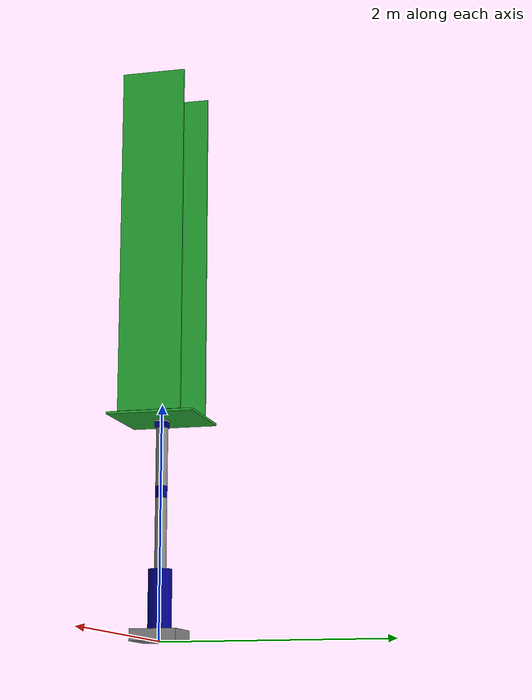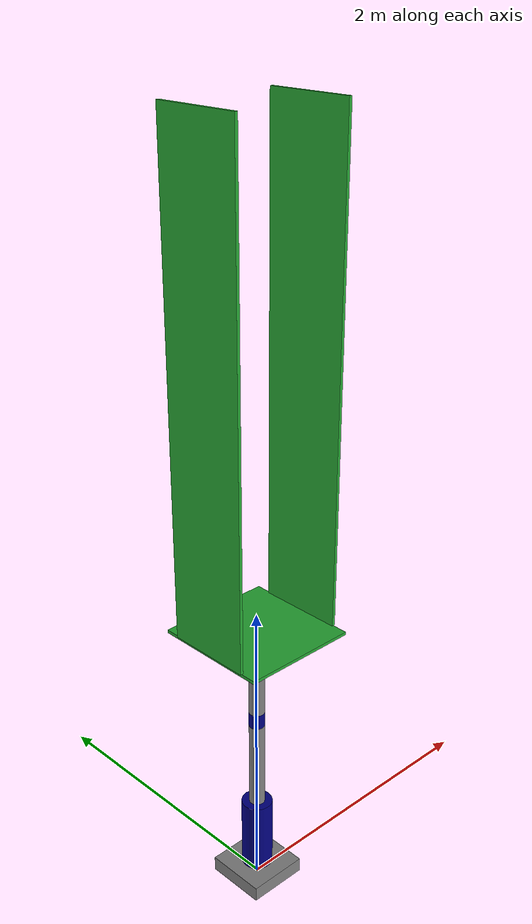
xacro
<?xml version="1.0"?>
<robot name="my_robot" xmlns:xacro="http://www.ros.org/wiki/xacro">

    <xacro:include filename="common_properties.urdf.xacro" />
    <xacro:include filename="arm_moveit.xacro" />
    <xacro:include filename="gripper.xacro" />
    <xacro:include filename="my_robot.ros2_control.xacro" />

    <joint name="gripper_base_joint" type="fixed">
        <parent link="tool_link" />
        <child link="gripper_base_link" />
        <origin xyz="0 0 0" rpy="0 0 0" />
    </joint>

</robot>

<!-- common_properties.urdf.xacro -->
<robot xmlns:xacro="http://www.ros.org/wiki/xacro">

    <material name="blue"> <!-- 这里自定义材料，颜色默认都是红色 -->
        <color rgba="0 0 0.5 1"/>
    </material>

    <material name="grey">
        <color rgba="0.5 0.5 0.5 1"/>
    </material>

    <material name="orange">
        <color rgba="1.0 0.5 0.0 1"/>
    </material>

    <material name="yellow">
        <color rgba="1.0 1.0 0.0 1"/>
    </material>

    <xacro:macro name="box_inertia" params="m x y z o_xyz o_rpy">
        <inertial>  <!-- 注意这里是末尾有l的（下面那个末尾没有l）-->
            <mass value="${m}" />  <!-- 质量 -->
            <!-- 转动惯量的原点设置，为了与物体模型匹配，所以他俩的原点设置是一样的 -->
            <origin xyz="${o_xyz}" rpy="${o_rpy}" />
            <!-- 转动惯量矩阵 详见https://en.wikipedia.org/wiki/List_of_moments_of_inertia-->
            <inertia ixx="${(m/12)*(y*y + z*z)}" ixy="0" ixz="0"
                     iyy="${(m/12)*(x*x + z*z)}" iyz="0"
                     izz="${(m/12)*(x*x + y*y)}" />
        </inertial>
    </xacro:macro>

    <xacro:macro name="cylinder_inertia" params="m r h o_xyz o_rpy">
        <inertial>
            <mass value="${m}" />
            <origin xyz="${o_xyz}" rpy="${o_rpy}" />
            <inertia ixx="${(m/12)*(3*r*r + h*h)}" ixy="0" ixz="0"
                     iyy="${(m/12)*(3*r*r + h*h)}" iyz="0"
                     izz="${(m*r*r)/2}" />
        </inertial>
    </xacro:macro>

    <xacro:macro name="sphere_inertia" params="m r o_xyz o_rpy">
        <inertial>
            <mass value="${m}" />
            <origin xyz="${o_xyz}" rpy="${o_rpy}" />
            <inertia ixx="${(2/5)*m*r*r}" ixy="0" ixz="0"
                     iyy="${(2/5)*m*r*r}" iyz="0"
                     izz="${(2/5)*m*r*r}" />
        </inertial>
    </xacro:macro>

</robot>

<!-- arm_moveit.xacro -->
<robot xmlns:xacro="http://www.ros.org/wiki/xacro">

    <link name="base_link">
        <visual>
            <geometry>
                <box size="0.4 0.4 0.1" />
            </geometry>
            <origin xyz="0 0 0.05" rpy="0 0 0" />
            <material name="grey" />
        </visual>

        <collision>
            <geometry>
                <box size="0.4 0.4 0.1" />
            </geometry>
            <origin xyz="0 0 0.05" rpy="0 0 0" />
        </collision>

        <xacro:box_inertia m="2.0" x="0.4" y="0.4" z="0.1"
                           o_xyz="0 0 0.05" o_rpy="0 0 0" />
    </link>

    <link name="shoulder_link">
        <visual>
            <geometry>
                <cylinder length="0.5" radius="0.1" />
            </geometry>
            <origin xyz="0 0 0.25" rpy="0 0 0" />
            <material name="blue" />
        </visual>

        <collision>
            <geometry>
                <cylinder length="0.5" radius="0.1" />
            </geometry>
            <origin xyz="0 0 0.25" rpy="0 0 0" />
        </collision>

        <xacro:cylinder_inertia m="1.5" r="0.1" h="0.5"
                                o_xyz="0 0 0.25" o_rpy="0 0 0" />
    </link>

    <link name="arm_link">
        <visual>
            <geometry>
                <cylinder length="0.6" radius="0.05" />
            </geometry>
            <origin xyz="0 0 0.3" rpy="0 0 0" />
            <material name="grey" />
        </visual>

        <collision>
            <geometry>
                <cylinder length="0.6" radius="0.05" />
            </geometry>
            <origin xyz="0 0 0.3" rpy="0 0 0" />
        </collision>

        <xacro:cylinder_inertia m="1.0" r="0.05" h="0.6"
                                o_xyz="0 0 0.3" o_rpy="0 0 0" />
    </link>

    <link name="elbow_link">
        <visual>
            <geometry>
                <cylinder length="0.1" radius="0.05" />
            </geometry>
            <origin xyz="0 0 0.05" rpy="0 0 0" />
            <material name="blue" />
        </visual>

        <collision>
            <geometry>
                <cylinder length="0.1" radius="0.05" />
            </geometry>
            <origin xyz="0 0 0.05" rpy="0 0 0" />
        </collision>

        <xacro:cylinder_inertia m="0.5" r="0.05" h="0.1"
                                o_xyz="0 0 0.05" o_rpy="0 0 0" />
    </link>

    <link name="forearm_link">
        <visual>
            <geometry>
                <cylinder length="0.5" radius="0.05" />
            </geometry>
            <origin xyz="0 0 0.25" rpy="0 0 0" />
            <material name="grey" />
        </visual>

        <collision>
            <geometry>
                <cylinder length="0.5" radius="0.05" />
            </geometry>
            <origin xyz="0 0 0.25" rpy="0 0 0" />
        </collision>

        <xacro:cylinder_inertia m="0.8" r="0.05" h="0.5"
                                o_xyz="0 0 0.25" o_rpy="0 0 0" />
    </link>

    <link name="wrist_link">
        <visual>
            <geometry>
                <box size="0.1 0.1 0.05" />
            </geometry>
            <origin xyz="0 0 0.025" rpy="0 0 0" />
            <material name="blue" />
        </visual>

        <collision>
            <geometry>
                <box size="0.1 0.1 0.05" />
            </geometry>
            <origin xyz="0 0 0.025" rpy="0 0 0" />
        </collision>

        <xacro:box_inertia m="0.3" x="0.1" y="0.1" z="0.05"
                           o_xyz="0 0 0.025" o_rpy="0 0 0" />
    </link>

    <link name="hand_link">
        <visual>
            <geometry>
                <box size="0.1 0.1 0.02" />
            </geometry>
            <origin xyz="0 0 0.01" rpy="0 0 0" />
            <material name="grey" />
        </visual>

        <collision>
            <geometry>
                <box size="0.1 0.1 0.02" />
            </geometry>
            <origin xyz="0 0 0.01" rpy="0 0 0" />
        </collision>

        <xacro:box_inertia m="0.2" x="0.1" y="0.1" z="0.02"
                           o_xyz="0 0 0.01" o_rpy="0 0 0" />
    </link>

    <link name="tool_link" />

    <joint name="joint1" type="revolute">
        <parent link="base_link" />
        <child link="shoulder_link" />
        <origin xyz="0 0 0.1" rpy="0 0 0" />
        <axis xyz="0 0 1" />
        <limit effort="1000.0" velocity="1.0" lower="-3.14" upper="3.14" />
    </joint>

    <joint name="joint2" type="revolute">
        <parent link="shoulder_link" />
        <child link="arm_link" />
        <origin xyz="0 0 0.5" rpy="0 0 0" />
        <axis xyz="0 1 0" />
        <limit effort="1000.0" velocity="1.0" lower="0" upper="2.5" />
    </joint>

    <joint name="joint3" type="revolute">
        <parent link="arm_link" />
        <child link="elbow_link" />
        <origin xyz="0 0 0.6" rpy="0 0 0" />
        <axis xyz="0 1 0" />
        <limit effort="1000.0" velocity="1.0" lower="0" upper="2.5" />
    </joint>

    <joint name="joint4" type="revolute">
        <parent link="elbow_link" />
        <child link="forearm_link" />
        <origin xyz="0 0 0.1" rpy="0 0 0" />
        <axis xyz="0 0 1" />
        <limit effort="1000.0" velocity="1.0" lower="-3.14" upper="3.14" />
    </joint>

    <joint name="joint5" type="revolute">
        <parent link="forearm_link" />
        <child link="wrist_link" />
        <origin xyz="0 0 0.5" rpy="0 0 0" />
        <axis xyz="0 1 0" />
        <limit effort="1000.0" velocity="1.0" lower="-1.57" upper="1.57" />
    </joint>

    <joint name="joint6" type="continuous">
        <parent link="wrist_link" />
        <child link="hand_link" />
        <origin xyz="0 0 0.05" rpy="0 0 0" />
        <axis xyz="0 0 1" />
    </joint>

    <joint name="hand_tool_joint" type="fixed">
        <parent link="hand_link" />
        <child link="tool_link" />
        <origin xyz="0 0 0.02" rpy="0 0 0" />
    </joint>

</robot>

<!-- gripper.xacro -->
<robot xmlns:xacro="https://www.ros.org/wiki/xacro">

    <link name="gripper_base_link">
        <visual>
            <geometry>
                <box size="0.75 0.75 0.02"/>
            </geometry>
            <origin xyz="0 0 0.01" rpy="0 0 0"/>
            <material name="dark_green"/>
        </visual>
        <collision>
            <geometry>
                <box size="0.75 0.75 0.02"/>
            </geometry>
            <origin xyz="0 0 0.01" rpy="0 0 0"/>
        </collision>
    </link>

    <link name="gripper_left_finger_link">
        <visual>
            <geometry>
                <box size="0.02 0.55 3.0"/>
            </geometry>
            <origin xyz="0 0 1.5" rpy="0 0 0"/>
            <material name="light_green"/>
        </visual>
        <collision>
            <geometry>
                <box size="0.02 0.55 3.0"/>
            </geometry>
            <origin xyz="0 0 1.5" rpy="0 0 0"/>
        </collision>
    </link>

    <link name="gripper_right_finger_link">
        <visual>
            <geometry>
                <box size="0.02 0.55 3.0"/>
            </geometry>
            <origin xyz="0 0 1.5" rpy="0 0 0"/>
            <material name="light_green"/>
        </visual>
        <collision>
            <geometry>
                <box size="0.02 0.55 3.0"/>
            </geometry>
            <origin xyz="0 0 1.5" rpy="0 0 0"/>
        </collision>
    </link>

    <joint name="gripper_left_finger_joint" type="prismatic">
        <parent link="gripper_base_link"/>
        <child link="gripper_left_finger_link"/>
        <origin xyz="-0.375 0 0.02" rpy="0 0 0"/>
        <axis xyz="1 0 0"/>
        <limit lower="0.0" upper="0.375" effort="1000.0" velocity="1.0"/>
    </joint>

    <joint name="gripper_right_finger_joint" type="prismatic">
        <parent link="gripper_base_link"/>
        <child link="gripper_right_finger_link"/>
        <origin xyz="0.375 0 0.02" rpy="0 0 0"/>
        <axis xyz="1 0 0"/>
        <mimic joint="gripper_left_finger_joint" multiplier="-1.0"/>
        <limit lower="-0.375" upper="0.0" effort="1000.0" velocity="1.0"/>
    </joint>

</robot>
